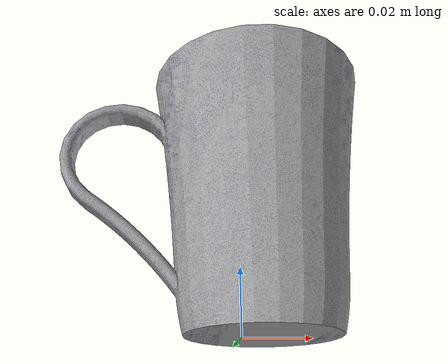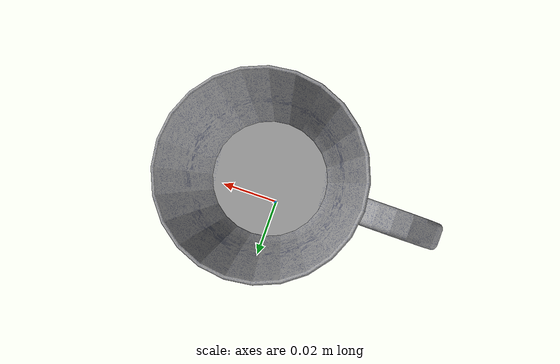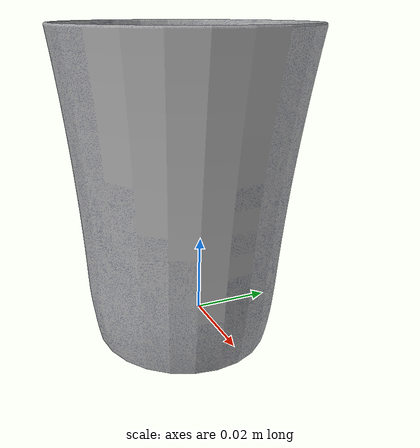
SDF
<?xml version='1.0'?>
<sdf version='1.5'>
  <model name='cup_blue'>
    <link name='link_13'>
       <inertial>
           <mass>0.02</mass>
       </inertial>
       <visual name='visual'>
        <geometry>
          <mesh>
            <uri>model://cup_blue/meshes/cup1.dae</uri>
            <scale>0.7 0.7 0.7</scale>
          </mesh>
        </geometry>
      </visual>
      <collision name='collision'>
        <laser_retro>0</laser_retro>
        <max_contacts>10</max_contacts>
        <pose frame=''>0 0 0 0 -0 0</pose>
        <geometry>
          <mesh>
            <uri>model://cup_blue/meshes/cup1.dae</uri>
            <scale>0.7 0.7 0.7</scale>
          </mesh>
        </geometry>
      </collision>
    </link>
    <static>0</static>
    <allow_auto_disable>1</allow_auto_disable>
  </model>
</sdf>
